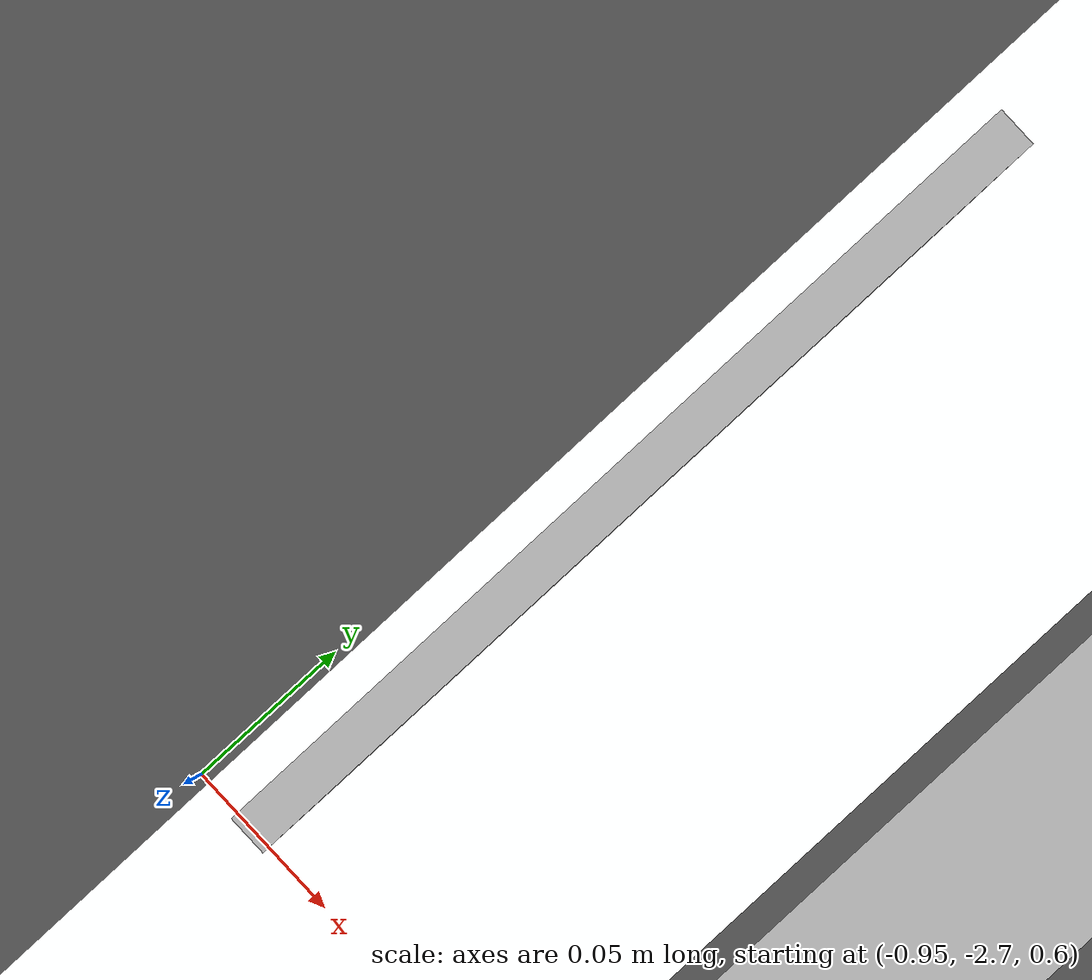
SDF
<sdf version="1.7">
 <world name="default">
  <light name="sun" type="directional">
   <pose>0 0 10 0 -0 0</pose>
   <diffuse>0.8 0.8 0.8 1</diffuse>
   <specular>0.2 0.2 0.2 1</specular>
   <attenuation>
    <range>1000</range>
    <constant>0.9</constant>
    <linear>0.01</linear>
    <quadratic>0.001</quadratic>
   </attenuation>
   <direction>-0.5 0.1 -0.9</direction>
   <spot><inner_angle>0</inner_angle><outer_angle>0</outer_angle><falloff>0</falloff></spot>
  </light>
  <model name="ground_plane">
   <static>1</static>
   <link name="link">
    <collision name="collision">
     <geometry><plane><normal>0 0 1</normal><size>100 100</size></plane></geometry>
     <surface><friction><ode><mu>100</mu><mu2>50</mu2></ode></friction></surface>
    </collision>
    <visual name="visual">
     <cast_shadows>0</cast_shadows>
     <geometry><plane><normal>0 0 1</normal><size>100 100</size></plane></geometry>
     <material>
      <script><uri>file://media/materials/scripts/gazebo.material</uri><name>Gazebo/Grey</name></script>
     </material>
    </visual>
   </link>
  </model>
  <gravity>0 0 -9.8</gravity>
  <magnetic_field>6e-06 2.3e-05 -4.2e-05</magnetic_field>
  <atmosphere type="adiabatic"/>
  <physics type="ode">
   <max_step_size>0.001</max_step_size>
   <real_time_factor>1</real_time_factor>
   <real_time_update_rate>1000</real_time_update_rate>
  </physics>
  <scene><ambient>0.4 0.4 0.4 1</ambient><background>0.7 0.7 0.7 1</background><shadows>1</shadows></scene>
  <audio><device>default</device></audio>
  <spherical_coordinates>
   <surface_model>EARTH_WGS84</surface_model>
   <latitude_deg>0</latitude_deg>
   <longitude_deg>0</longitude_deg>
   <elevation>0</elevation>
   <heading_deg>0</heading_deg>
  </spherical_coordinates>
  <model name="lab">
   <static>1</static>
   <link name="link">
    <visual name="visual">
     <geometry><mesh><scale>1 1 1</scale><uri>model://lab/meshes/lab.STL</uri></mesh></geometry>
    </visual>
    <collision name="collision">
     <geometry><mesh><scale>1 1 1</scale><uri>model://lab/meshes/lab.STL</uri></mesh></geometry>
    </collision>
   </link>
   <pose>0.788676 -1.77419 0 0 -0 0</pose>
  </model>
  <model name="Apriltag36_11_00000">
   <link name="main">
    <visual name="main_Visual">
     <geometry><box><size>0.238998 0.223148 0.01</size></box></geometry>
     <material>
      <script>
       <uri>model://Apriltag36_11_00000/materials/scripts</uri>
       <uri>model://Apriltag36_11_00000/materials/textures</uri>
       <name>Apriltag36_11_00000</name>
      </script>
     </material>
    </visual>
   </link>
   <static>1</static>
   <pose>-0.927587 -2.56492 0.714116 0 1.57 0</pose>
  </model>
 </world>
</sdf>
